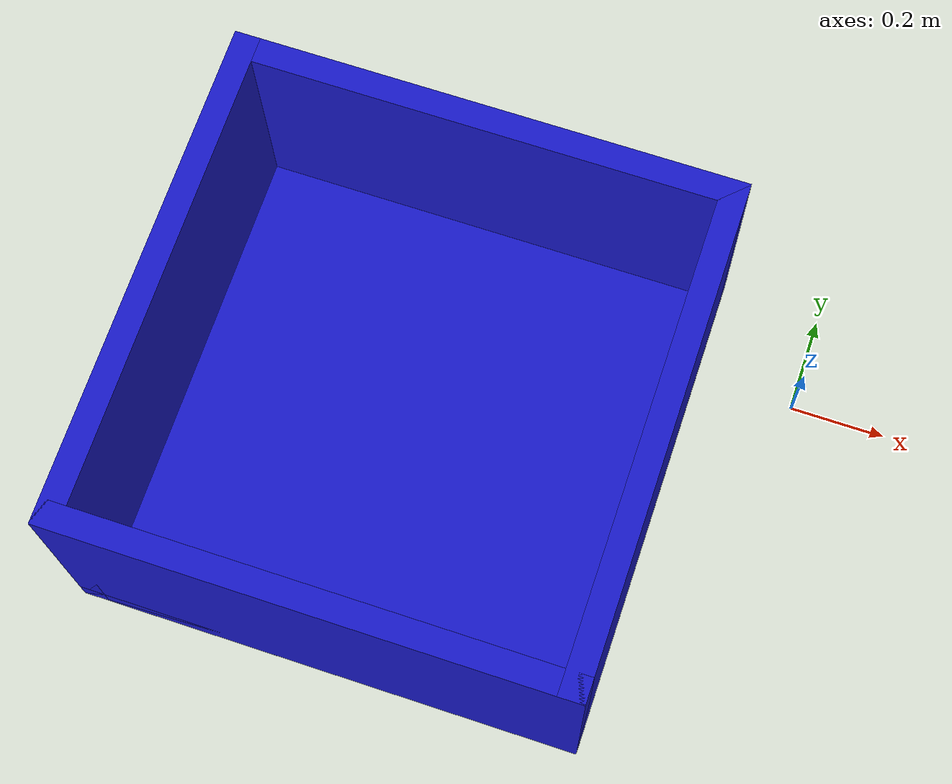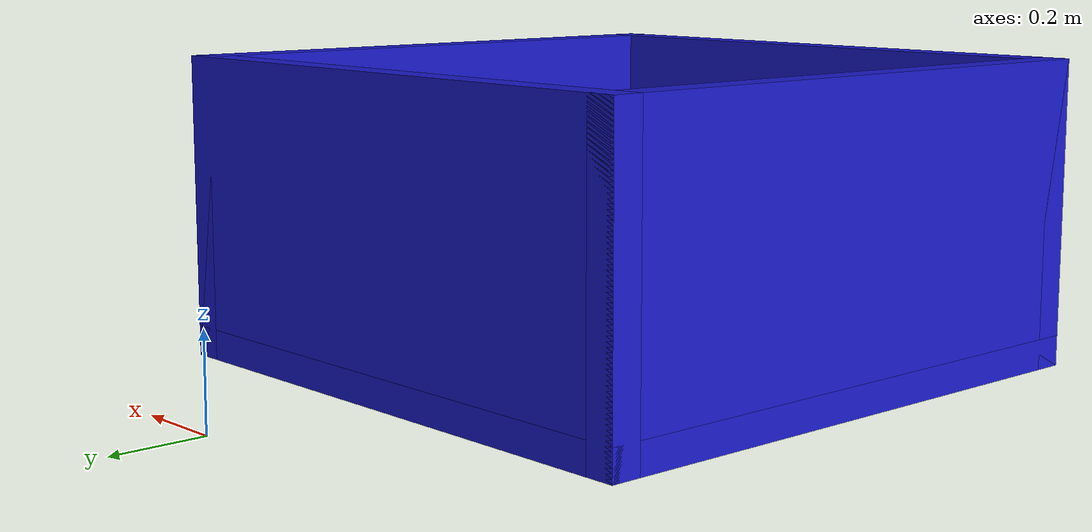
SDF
<?xml version="1.0" ?>
<sdf version="1.6">
  <model name="hollow_box_with_sensor">
    <static>false</static>  <!-- Box can move dynamically -->

    <!-- Main Link for the Box -->
    <link name="box_body">
      <inertial>
        <mass>5.0</mass>
        <inertia>
          <ixx>1.0</ixx> <ixy>0.0</ixy> <ixz>0.0</ixz>
          <iyy>1.0</iyy> <iyz>0.0</iyz> <izz>1.0</izz>
        </inertia>
      </inertial>

      <!-- Bottom of the Box -->
      <visual name="bottom_visual">
        <geometry>
          <box>
            <size>1.0 1.0 0.05</size>  <!-- Thin bottom layer -->
          </box>
        </geometry>
        <material>
          <ambient>0.1 0.1 0.8 1</ambient>  <!-- Blueish color -->
          <diffuse>0.1 0.1 0.8 1</diffuse>
        </material>
        <pose>0 0 -0.225 0 0 0</pose>  <!-- Positioned at the bottom -->
      </visual>

      <collision name="bottom_collision">
        <geometry>
          <box>
            <size>1.0 1.0 0.05</size>  <!-- Bottom collision size -->
          </box>
        </geometry>
        <pose>0 0 -0.225 0 0 0</pose>  <!-- Positioned at the bottom -->
      </collision>

      <!-- Front Wall -->
      <visual name="front_wall_visual">
        <geometry>
          <box>
            <size>1.0 0.05 0.5</size>  <!-- Front wall size -->
          </box>
        </geometry>
        <pose>0 0.475 0 0 0 0</pose>
        <material>
          <ambient>0.1 0.1 0.8 1</ambient>
          <diffuse>0.1 0.1 0.8 1</diffuse>
        </material>
      </visual>

      <!-- Back Wall -->
      <visual name="back_wall_visual">
        <geometry>
          <box>
            <size>1.0 0.05 0.5</size>  <!-- Back wall size -->
          </box>
        </geometry>
        <pose>0 -0.475 0 0 0 0</pose>
        <material>
          <ambient>0.1 0.1 0.8 1</ambient>
          <diffuse>0.1 0.1 0.8 1</diffuse>
        </material>
      </visual>

      <!-- Left Wall -->
      <visual name="left_wall_visual">
        <geometry>
          <box>
            <size>0.05 1.0 0.5</size>  <!-- Left wall size -->
          </box>
        </geometry>
        <pose>-0.475 0 0 0 0 0</pose>
        <material>
          <ambient>0.1 0.1 0.8 1</ambient>
          <diffuse>0.1 0.1 0.8 1</diffuse>
        </material>
      </visual>

      <!-- Right Wall -->
      <visual name="right_wall_visual">
        <geometry>
          <box>
            <size>0.05 1.0 0.5</size>  <!-- Right wall size -->
          </box>
        </geometry>
        <pose>0.475 0 0 0 0 0</pose>
        <material>
          <ambient>0.1 0.1 0.8 1</ambient>
          <diffuse>0.1 0.1 0.8 1</diffuse>
        </material>
      </visual>

      <!-- Midpoint Contact Sensor -->
      <sensor name="midpoint_sensor" type="contact">
        <pose>0 0 0 0 0 0</pose>  <!-- Midpoint of the box height -->
        <update_rate>10</update_rate>
        <contact>
          <collision>sensor_collision</collision>  <!-- Detects placed objects -->
        </contact>

        <!-- Sensor Plugin -->
        <plugin name="contact_sensor_plugin" filename="libgazebo_ros_bumper.so">
          <ros>
            <namespace>/box</namespace>  <!-- ROS namespace -->
          </ros>
          <topicName>/box/sensor_contacts</topicName>  <!-- ROS topic -->
        </plugin>
      </sensor>

      <collision name="sensor_collision">
        <geometry>
          <box>
            <size>0.8 0.8 0.05</size>  <!-- Sensor is smaller than the box -->
          </box>
        </geometry>
        <pose>0 0 0 0 0 0</pose>  <!-- Positioned at the midpoint of height -->
      </collision>
    </link>

    <!-- Spawn the Box Above the Ground -->
    <pose>-0.706394 -0.369733 0.458693 0 0 0</pose>
  </model>
</sdf>
